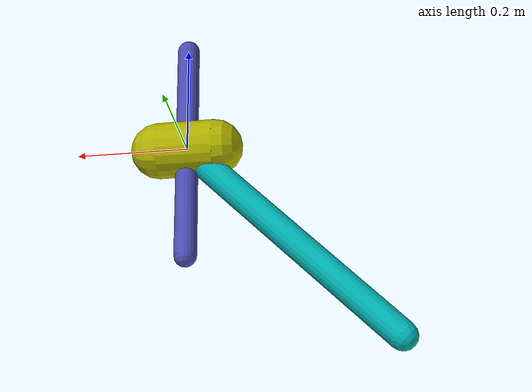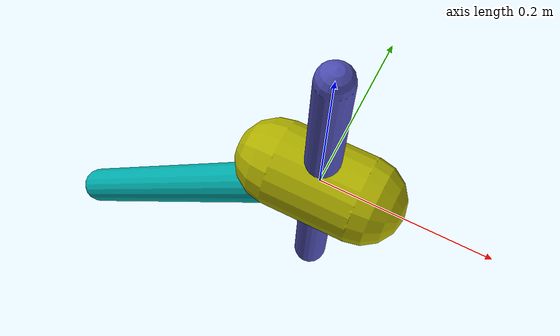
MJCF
<mujoco model="cartpole">
  <compiler coordinate="local" inertiafromgeom="true"/>
  <custom>
    <numeric data="2" name="frame_skip"/>
  </custom>
  <default>
    <joint damping="0.05"/>
    <geom contype="0" friction="1 0.1 0.1" rgba="0.7 0.7 0 1"/>
  </default>
  <option gravity="1e-5 0 -9.81" integrator="RK4" timestep="0.01"/>
  <size nstack="3000"/>
  <worldbody>
    <geom name="floor" pos="0 0 -3.0" rgba="0.8 0.9 0.8 1" size="40 40 40" type="plane"/>
    <geom name="rail" pos="0 0 0" quat="0.707 0 0 0" rgba="0.3 0.3 0.7 1" size="0.02 0.2" type="capsule"/>
    <body name="cart" pos="0 0 0">
      <joint axis="0 0 1" limited="true" margin="0.01" name="slider" pos="0 0 0" range="-0.15 0.15" type="slide"/>
      <geom name="cart" pos="0 0 0" quat="0.707 0 0.707 0" size="0.05 0.05" type="capsule"/>
      <body name="pole" pos="0 0 0">
        <joint axis="0 1 0" name="hinge" pos="0 0 0" type="hinge" range="-0.7 0.7"/>
        <geom  name="cpole" fromto="0 0 0 -0.353 0 -0.353" rgba="0 0.7 0.7 1" size="0.025 0.3"  type="capsule"/>
        <site name="tip" pos="-0.353 0 -0.353" size="0.01 0.01"/>#-0.353

      </body>
    </body>
  </worldbody>
  <actuator>
    <motor ctrllimited="true" ctrlrange="-1 1" gear="500" joint="slider" name="slide"/>
  </actuator>
</mujoco>
